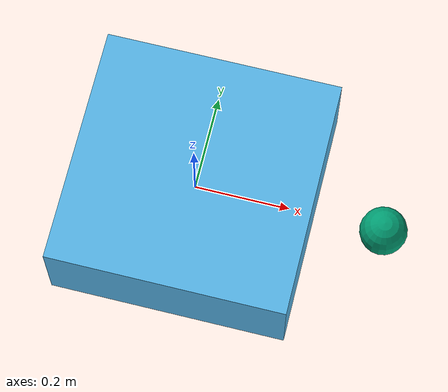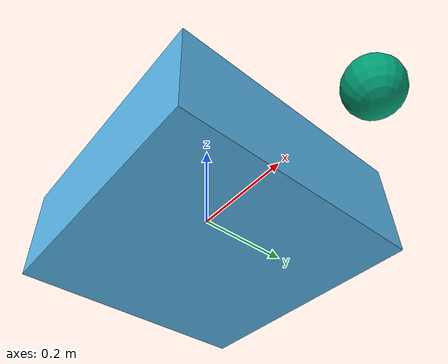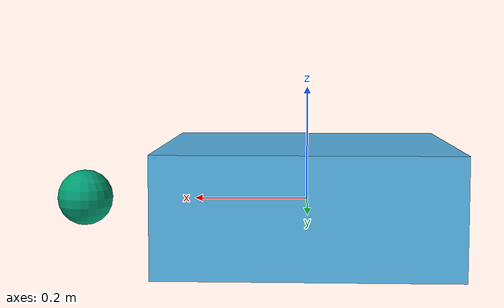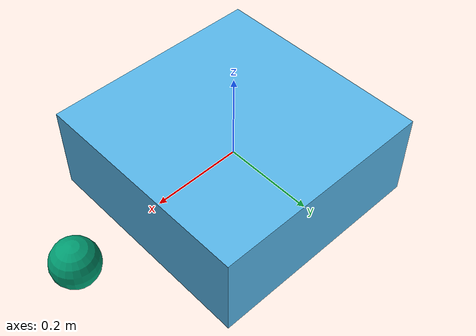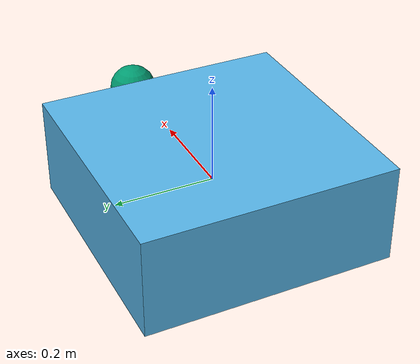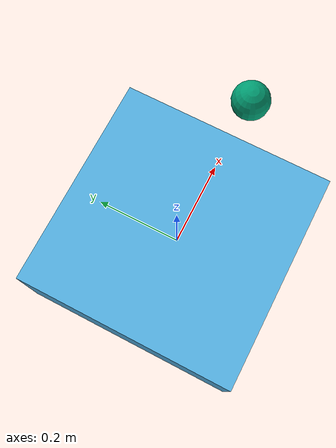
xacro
<?xml version="1.0"?>

<robot name="draft" xmnls:xacro="http://ros.org/wiki/xacro">

    <joint name="base_joint" type="fixed">
        <parent link="base_footprint"/>
        <child link="base_link"/>
        <origin xyz="0 0 0" rpy="0 0 0"/>
    </joint>

    <link name="base_footprint"/>

    <link name="base_link">
        <visual>
            <origin xyz="0 0 0" rpy="0 0 0"/>
            <geometry>
                <box size="0.5 0.5 0.2"/>
            </geometry>
        </visual>

        <collision>
            <origin xyz="0 0 0" rpy="0 0 0"/>
            <geometry>
                <box size="0.5 0.5 0.2"/>
            </geometry>
        </collision>

        <intertial>
            <origin xyz="0 0 0" rpy="0 0 0"/>
            <mass value="1"/>
            <inertia ixx="0.001" ixy="0" ixz="0"
                     iyy="0.001" iyz="0"
                     izz="0.001"/>
        </intertial>
    </link>

    <joint name="laser_front_joint" type="fixed">
        <parent link="base_link"/>
        <child link="laser_front_link"/>
        <origin xyz="0.4 0 0" rpy="0 0 0"/>
    </joint>

    <link name="laser_front_link">
        <visual>
            <origin xyz="0 0 0" rpy="0 0 0"/>
            <geometry>
                <sphere radius="0.05"/>
            </geometry>
        </visual>
    </link>

    <joint name="laser_rear_joint" type="fixed">
        <parent link="base_link"/>
        <child link="laser_rear_link"/>
        <origin xyz="0.4 0 0" rpy="0 0 0"/>
    </joint>

    <link name="laser_rear_link">
        <visual>
            <origin xyz="0 0 0" rpy="0 0 0"/>
            <geometry>
                <sphere radius="0.05"/>
            </geometry>
        </visual>
    </link>

</robot>
